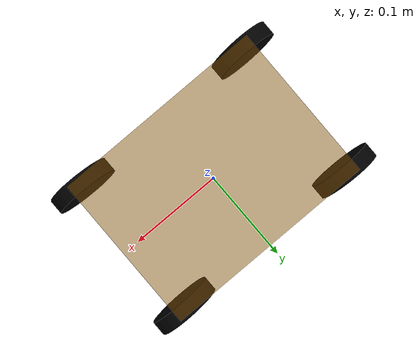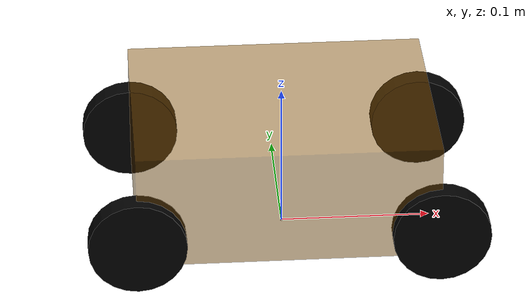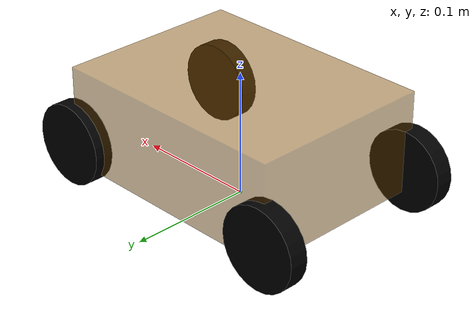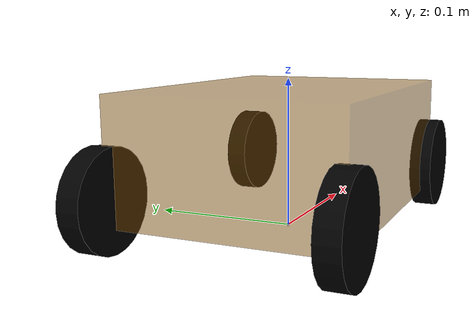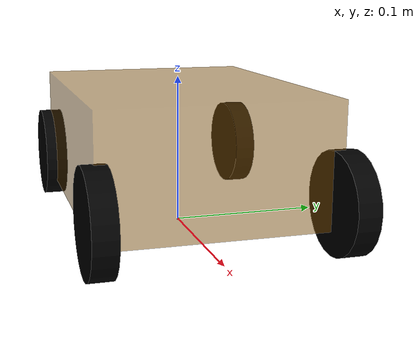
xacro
<robot name="mark_base" xmlns:xacro="http://www.ros.org/wiki/xacro">
	<xacro:property name="PI" value="3.1415926" />
	<material name="black">
		<color rgba="0.0 0.0 0.0 1.0" />
	</material>
	<xacro:property name="base_length" value="0.2" />
	<xacro:property name="base_width" value="0.15" />
	<xacro:property name="base_height" value="0.08" />
	<xacro:property name="footprint_radius" value="0.001" />
	<xacro:property name="earth_space" value="0.015" />
	<xacro:property name="base_mass" value="0.5" />

	<link name="base_link">
		<visual>
			<geometry>
				<box size="${base_length} ${base_width} ${base_height}" />
			</geometry>
			<origin xyz="0 0 0" rpy="0 0 0" />
			<material name="yellow">
				<color rgba="0.5 0.3 0.0 0.5" />
			</material>
		</visual>
		<collision>
			<geometry>
				<box size="${base_length} ${base_width} ${base_height}" />
			</geometry>
			<origin xyz="0 0 0" rpy="0 0 0" />
		</collision>
		<xacro:Box_inertial_matrix m="${base_mass}" w="${base_width}" l="${base_length}" h="${base_height}" />
	</link>

	<link name="base_footprint">
		<visual>
			<geometry>
				<sphere radius="${footprint_radius}" />
			</geometry>
		</visual>
	</link>
	<joint name="base_link2base_footprint" type="fixed">
		<parent link="base_footprint" />
		<child link="base_link" />
		<origin xyz="0 0 ${earth_space + base_height / 2}" />
	</joint>
	<gazebo reference="base_link">
		<material>Gazebo/Yellow</material>
	</gazebo>

	<xacro:property name="wheel_radius" value="0.0325" />
	<xacro:property name="wheel_length" value="0.015" />
	<xacro:property name="wheel_mass" value="0.05" />
	<xacro:macro name="add_wheels" params="name flag1 flag2">
		<link name="${name}_wheel">
			<visual>
				<geometry>
					<cylinder radius="${wheel_radius}" length="${wheel_length}" />
				</geometry>
				<origin xyz="0.0 0.0 0.0" rpy="${PI / 2} 0.0 0.0" />
				<material name="black" />
			</visual>
			<collision>
				<geometry>
					<cylinder radius="${wheel_radius}" length="${wheel_length}" />
				</geometry>
				<origin xyz="0.0 0.0 0.0" rpy="${PI / 2} 0.0 0.0" />
			</collision>
			<xacro:cylinder_inertial_matrix m="${wheel_mass}" r="${wheel_radius}" h="${wheel_length}" />
		</link>

		<joint name="${name}_wheel2base_link" type="continuous">
			<parent link="base_link" />
			<child link="${name}_wheel" />
			<origin xyz="${flag1 * base_length / 2} ${flag2 * base_width / 2} ${-(earth_space + base_height / 2 - wheel_radius) }" />
			<axis xyz="0 1 0" />
		</joint>

		<gazebo reference="${name}_wheel">
			<material>Gazebo/Red</material>
		</gazebo>
	</xacro:macro>

	<xacro:add_wheels name="front_left" flag1="1" flag2="1" />
	<xacro:add_wheels name="back_left" flag1="1" flag2="-1" />
	<xacro:add_wheels name="front_right" flag1="-1" flag2="1" />
	<xacro:add_wheels name="back_right" flag1="-1" flag2="-1" />

</robot>
